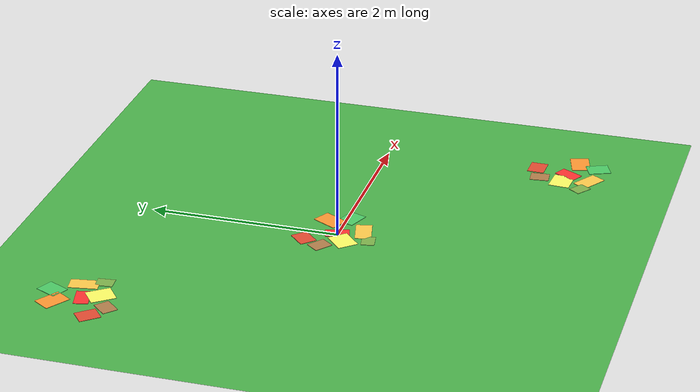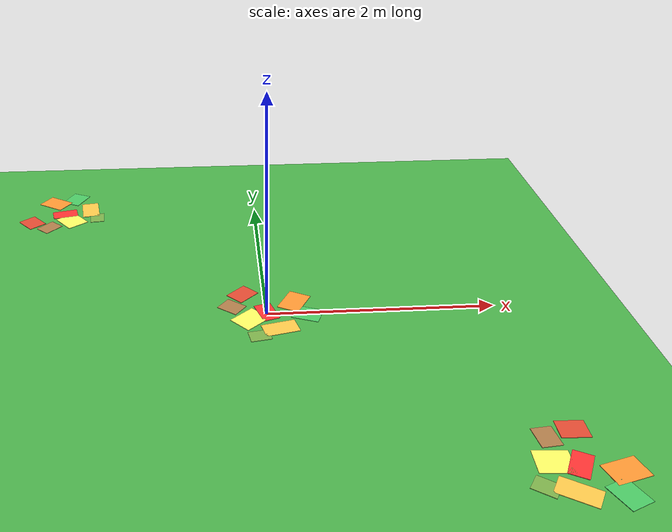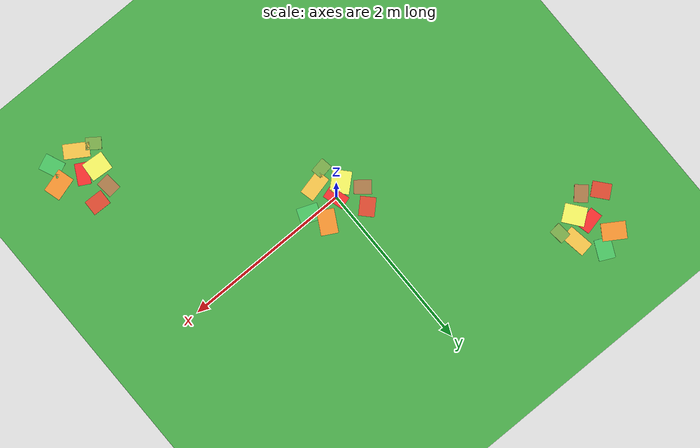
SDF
<sdf version="1.8">
 <world name="mixed_terrain_test">
  <plugin name="ignition::gazebo::systems::Physics" filename="ignition-gazebo-physics-system"/>
  <plugin name="ignition::gazebo::systems::UserCommands" filename="ignition-gazebo-user-commands-system"/>
  <plugin name="ignition::gazebo::systems::SceneBroadcaster" filename="ignition-gazebo-scene-broadcaster-system"/>
  <plugin name="ignition::gazebo::systems::Contact" filename="ignition-gazebo-contact-system"/>
  <light name="sun" type="directional">
   <pose>0 0 25 0 -0 0</pose>
   <diffuse>1.0 0.9 0.8 1</diffuse>
   <specular>0.4 0.4 0.4 1</specular>
   <attenuation>
    <range>1000</range>
    <constant>0.9</constant>
    <linear>0.01</linear>
    <quadratic>0.001</quadratic>
   </attenuation>
   <direction>-0.2 0.1 -0.9</direction>
  </light>
  <gravity>0 0 -9.81</gravity>
  <physics name="default_physics" type="ignored">
   <max_step_size>0.01</max_step_size>
   <real_time_factor>1</real_time_factor>
   <real_time_update_rate>100</real_time_update_rate>
  </physics>
  <scene><ambient>0.9 0.9 0.8 1</ambient><background>0.6 0.8 1.0 1</background><shadows>1</shadows></scene>
  <spherical_coordinates>
   <latitude_deg>-33.8847</latitude_deg>
   <longitude_deg>151.2059</longitude_deg>
   <elevation>10.0</elevation>
   <heading_deg>0</heading_deg>
   <surface_model>EARTH_WGS84</surface_model>
  </spherical_coordinates>
  <model name="ground_plane">
   <static>true</static>
   <link name="ground_link">
    <collision name="ground_collision">
     <geometry><plane><normal>0 0 1</normal><size>40 40</size></plane></geometry>
    </collision>
    <visual name="ground_visual">
     <geometry><plane><normal>0 0 1</normal><size>40 40</size></plane></geometry>
     <material><ambient>0.3 0.7 0.3 1</ambient><diffuse>0.3 0.7 0.3 1</diffuse></material>
    </visual>
   </link>
  </model>
  <include>
   <uri>file:///home/student/git/FIREWARDENBOT/World/41068_ws/src/models/autumn_leaves</uri>
   <name>test_leaves_1</name>
   <pose>0 0 0.01 0 0 0</pose>
  </include>
  <include>
   <uri>file:///home/student/git/FIREWARDENBOT/World/41068_ws/src/models/autumn_leaves</uri>
   <name>test_leaves_2</name>
   <pose>-2 2 0.01 0 0 1.5</pose>
  </include>
  <include>
   <uri>file:///home/student/git/FIREWARDENBOT/World/41068_ws/src/models/autumn_leaves</uri>
   <name>test_leaves_3</name>
   <pose>2 -2 0.01 0 0 -0.8</pose>
  </include>
 </world>
</sdf>

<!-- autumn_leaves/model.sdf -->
<sdf version="1.8">
  <model name="autumn_leaves">
    <static>true</static>

    <!-- Large, colorful autumn leaf cluster -->
    <link name="leaf_cluster">
      <pose>0 0 0.01 0 0 0</pose>

      <!-- Bright Red Dead Leaves -->
      <visual name="red_leaf_1">
        <pose>0 0 0 0 0 0.3</pose>
        <geometry>
          <box>
            <size>0.15 0.25 0.005</size>
          </box>
        </geometry>
        <material>
          <ambient>0.9 0.1 0.1 1</ambient>
          <diffuse>1.0 0.2 0.2 1</diffuse>
          <specular>0.2 0.1 0.1 1</specular>
        </material>
      </visual>
      <visual name="red_leaf_2">
        <pose>-0.2 0.3 0 0 0 -0.8</pose>
        <geometry>
          <box>
            <size>0.18 0.22 0.005</size>
          </box>
        </geometry>
        <material>
          <ambient>0.8 0.2 0.1 1</ambient>
          <diffuse>0.9 0.3 0.2 1</diffuse>
          <specular>0.2 0.1 0.1 1</specular>
        </material>
      </visual>

      <!-- Bright Orange Transitional Leaves -->
      <visual name="orange_leaf_1">
        <pose>0.25 0.15 0 0 0 -0.5</pose>
        <geometry>
          <box>
            <size>0.20 0.28 0.005</size>
          </box>
        </geometry>
        <material>
          <ambient>1.0 0.5 0.1 1</ambient>
          <diffuse>1.0 0.6 0.2 1</diffuse>
          <specular>0.3 0.2 0.1 1</specular>
        </material>
      </visual>
      <visual name="orange_leaf_2">
        <pose>0.1 -0.25 0 0 0 1.8</pose>
        <geometry>
          <box>
            <size>0.17 0.30 0.005</size>
          </box>
        </geometry>
        <material>
          <ambient>1.0 0.7 0.2 1</ambient>
          <diffuse>1.0 0.8 0.3 1</diffuse>
          <specular>0.3 0.2 0.1 1</specular>
        </material>
      </visual>

      <!-- Yellow Autumn Leaves -->
      <visual name="yellow_leaf_1">
        <pose>-0.15 -0.1 0 0 0 2.3</pose>
        <geometry>
          <box>
            <size>0.22 0.26 0.005</size>
          </box>
        </geometry>
        <material>
          <ambient>1.0 0.9 0.2 1</ambient>
          <diffuse>1.0 1.0 0.4 1</diffuse>
          <specular>0.3 0.3 0.1 1</specular>
        </material>
      </visual>

      <!-- Brown Dead Leaves -->
      <visual name="brown_leaf_1">
        <pose>-0.3 0.1 0 0 0 0.9</pose>
        <geometry>
          <box>
            <size>0.16 0.20 0.005</size>
          </box>
        </geometry>
        <material>
          <ambient>0.6 0.4 0.2 1</ambient>
          <diffuse>0.7 0.5 0.3 1</diffuse>
          <specular>0.2 0.1 0.1 1</specular>
        </material>
      </visual>

      <!-- Green Fresh Leaves (still some life) -->
      <visual name="green_leaf_1">
        <pose>0.35 -0.05 0 0 0 1.2</pose>
        <geometry>
          <box>
            <size>0.19 0.24 0.005</size>
          </box>
        </geometry>
        <material>
          <ambient>0.2 0.7 0.3 1</ambient>
          <diffuse>0.3 0.8 0.4 1</diffuse>
          <specular>0.1 0.3 0.1 1</specular>
        </material>
      </visual>
      <visual name="green_leaf_2">
        <pose>-0.08 -0.35 0 0 0 -1.4</pose>
        <geometry>
          <box>
            <size>0.14 0.18 0.005</size>
          </box>
        </geometry>
        <material>
          <ambient>0.4 0.6 0.2 1</ambient>
          <diffuse>0.5 0.7 0.3 1</diffuse>
          <specular>0.1 0.2 0.1 1</specular>
        </material>
      </visual>

    </link>
  </model>
</sdf>
